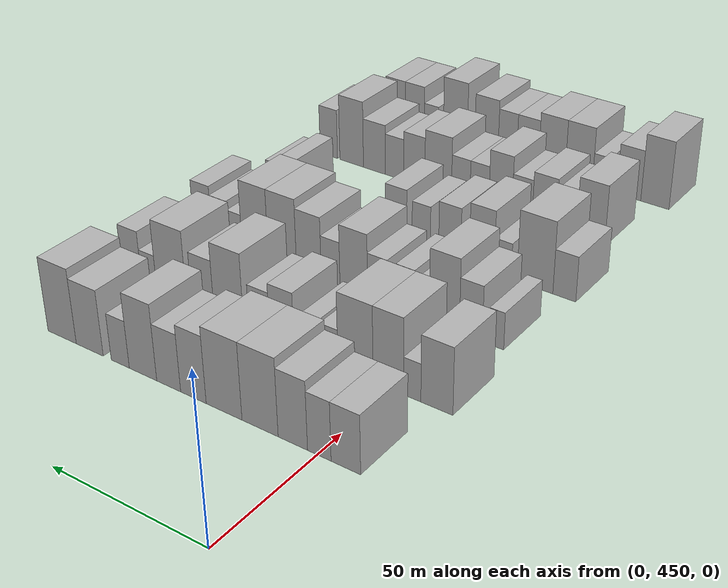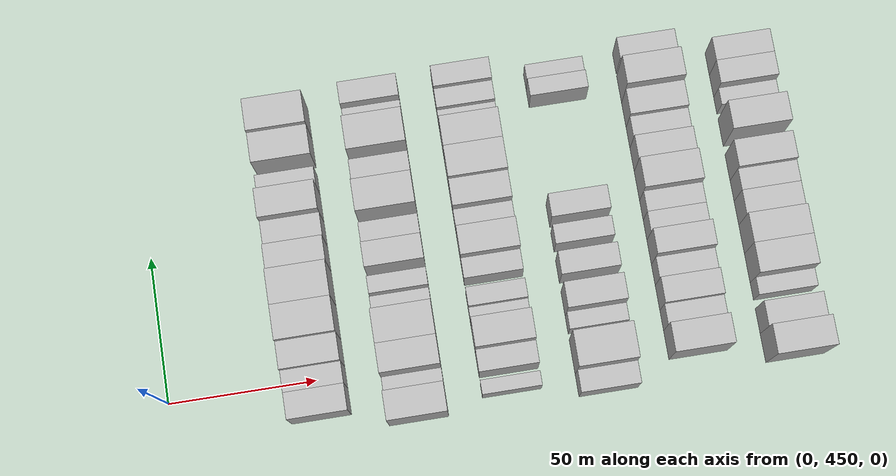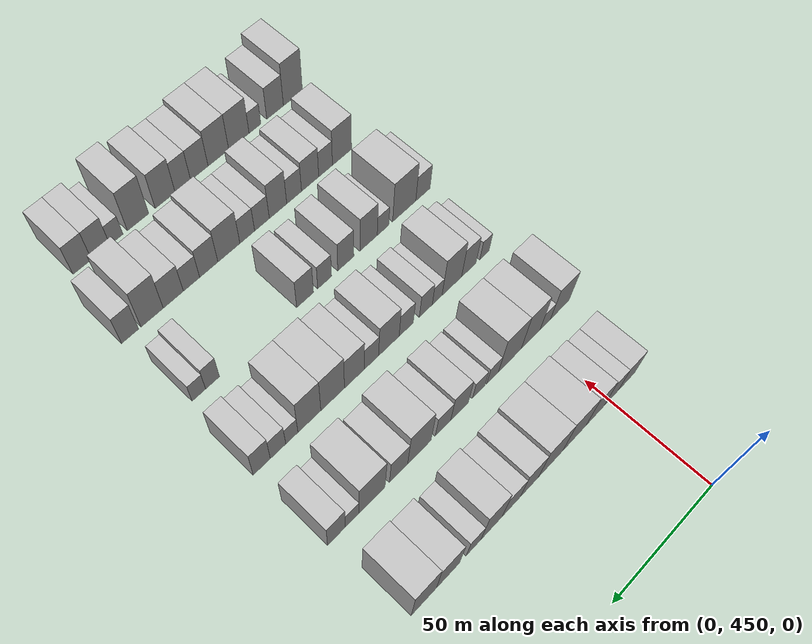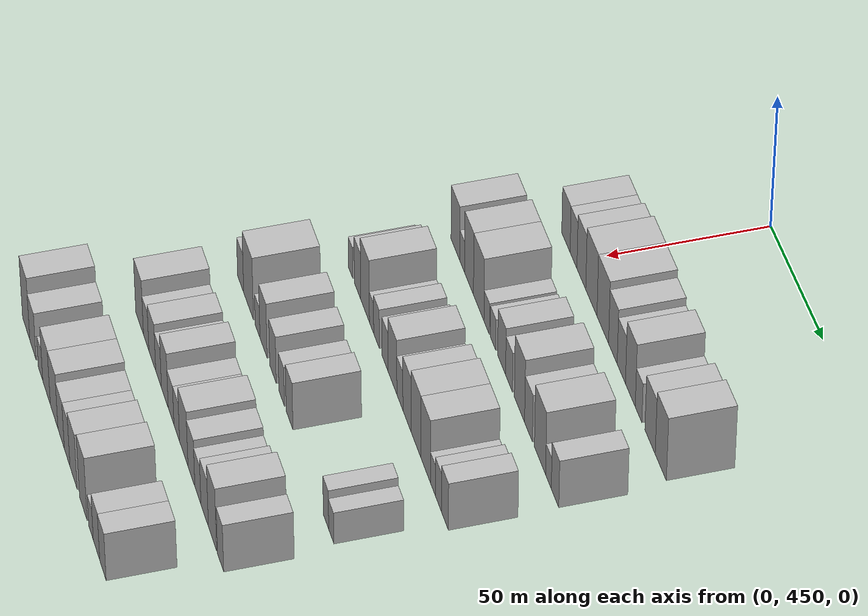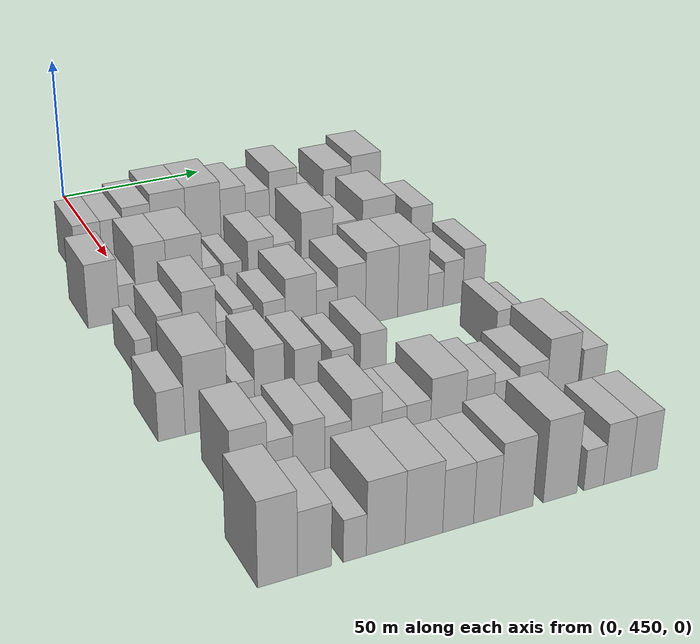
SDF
<sdf version="1.6">
 <world name="default">
  <model name="building_107">
   <static>1</static>
   <pose>50.0000 441.2663 0 0.000000 0.000000 0.000000</pose>
   <link name="link">
    <pose>0 0 9.00 0 0 0</pose>
    <collision name="collision"><geometry><box><size>20.0000 8.8864 18.0000</size></box></geometry></collision>
    <visual name="visual">
     <cast_shadows>0</cast_shadows>
     <geometry><box><size>20.0000 8.8864 18.0000</size></box></geometry>
     <material>
      <script>
       <uri>model://HANNAS_wall/materials/scripts</uri>
       <uri>model://HANNAS_wall/materials/textures</uri>
       <name>vrc/HANNAS_wall</name>
      </script>
     </material>
    </visual>
   </link>
  </model>
  <model name="building_108">
   <static>1</static>
   <pose>50.0000 449.3331 0 0.000000 0.000000 0.000000</pose>
   <link name="link">
    <pose>0 0 9.00 0 0 0</pose>
    <collision name="collision"><geometry><box><size>20.0000 7.2473 18.0000</size></box></geometry></collision>
    <visual name="visual">
     <cast_shadows>0</cast_shadows>
     <geometry><box><size>20.0000 7.2473 18.0000</size></box></geometry>
     <material>
      <script>
       <uri>model://HANNAS_wall/materials/scripts</uri>
       <uri>model://HANNAS_wall/materials/textures</uri>
       <name>vrc/HANNAS_wall</name>
      </script>
     </material>
    </visual>
   </link>
  </model>
  <model name="building_109">
   <static>1</static>
   <pose>50.0000 457.5856 0 0.000000 0.000000 0.000000</pose>
   <link name="link">
    <pose>0 0 10.50 0 0 0</pose>
    <collision name="collision"><geometry><box><size>20.0000 9.2577 21.0000</size></box></geometry></collision>
    <visual name="visual">
     <cast_shadows>0</cast_shadows>
     <geometry><box><size>20.0000 9.2577 21.0000</size></box></geometry>
     <material>
      <script>
       <uri>model://HANNAS_wall/materials/scripts</uri>
       <uri>model://HANNAS_wall/materials/textures</uri>
       <name>vrc/HANNAS_wall</name>
      </script>
     </material>
    </visual>
   </link>
  </model>
  <model name="building_110">
   <static>1</static>
   <pose>50.0000 468.0788 0 0.000000 0.000000 0.000000</pose>
   <link name="link">
    <pose>0 0 12.00 0 0 0</pose>
    <collision name="collision"><geometry><box><size>20.0000 11.7287 24.0000</size></box></geometry></collision>
    <visual name="visual">
     <cast_shadows>0</cast_shadows>
     <geometry><box><size>20.0000 11.7287 24.0000</size></box></geometry>
     <material>
      <script>
       <uri>model://HANNAS_wall/materials/scripts</uri>
       <uri>model://HANNAS_wall/materials/textures</uri>
       <name>vrc/HANNAS_wall</name>
      </script>
     </material>
    </visual>
   </link>
  </model>
  <model name="building_111">
   <static>1</static>
   <pose>50.0000 479.9345 0 0.000000 0.000000 0.000000</pose>
   <link name="link">
    <pose>0 0 12.00 0 0 0</pose>
    <collision name="collision"><geometry><box><size>20.0000 11.9826 24.0000</size></box></geometry></collision>
    <visual name="visual">
     <cast_shadows>0</cast_shadows>
     <geometry><box><size>20.0000 11.9826 24.0000</size></box></geometry>
     <material>
      <script>
       <uri>model://HANNAS_wall/materials/scripts</uri>
       <uri>model://HANNAS_wall/materials/textures</uri>
       <name>vrc/HANNAS_wall</name>
      </script>
     </material>
    </visual>
   </link>
  </model>
  <model name="building_112">
   <static>1</static>
   <pose>50.0000 490.3185 0 0.000000 0.000000 0.000000</pose>
   <link name="link">
    <pose>0 0 10.50 0 0 0</pose>
    <collision name="collision"><geometry><box><size>20.0000 8.7855 21.0000</size></box></geometry></collision>
    <visual name="visual">
     <cast_shadows>0</cast_shadows>
     <geometry><box><size>20.0000 8.7855 21.0000</size></box></geometry>
     <material>
      <script>
       <uri>model://HANNAS_wall/materials/scripts</uri>
       <uri>model://HANNAS_wall/materials/textures</uri>
       <name>vrc/HANNAS_wall</name>
      </script>
     </material>
    </visual>
   </link>
  </model>
  <model name="building_113">
   <static>1</static>
   <pose>50.0000 498.9245 0 0.000000 0.000000 0.000000</pose>
   <link name="link">
    <pose>0 0 9.00 0 0 0</pose>
    <collision name="collision"><geometry><box><size>20.0000 8.4264 18.0000</size></box></geometry></collision>
    <visual name="visual">
     <cast_shadows>0</cast_shadows>
     <geometry><box><size>20.0000 8.4264 18.0000</size></box></geometry>
     <material>
      <script>
       <uri>model://HANNAS_wall/materials/scripts</uri>
       <uri>model://HANNAS_wall/materials/textures</uri>
       <name>vrc/HANNAS_wall</name>
      </script>
     </material>
    </visual>
   </link>
  </model>
  <model name="building_114">
   <static>1</static>
   <pose>50.0000 508.0843 0 0.000000 0.000000 0.000000</pose>
   <link name="link">
    <pose>0 0 12.00 0 0 0</pose>
    <collision name="collision"><geometry><box><size>20.0000 9.8933 24.0000</size></box></geometry></collision>
    <visual name="visual">
     <cast_shadows>0</cast_shadows>
     <geometry><box><size>20.0000 9.8933 24.0000</size></box></geometry>
     <material>
      <script>
       <uri>model://HANNAS_wall/materials/scripts</uri>
       <uri>model://HANNAS_wall/materials/textures</uri>
       <name>vrc/HANNAS_wall</name>
      </script>
     </material>
    </visual>
   </link>
  </model>
  <model name="building_115">
   <static>1</static>
   <pose>50.0000 516.3535 0 0.000000 0.000000 0.000000</pose>
   <link name="link">
    <pose>0 0 7.50 0 0 0</pose>
    <collision name="collision"><geometry><box><size>20.0000 6.6451 15.0000</size></box></geometry></collision>
    <visual name="visual">
     <cast_shadows>0</cast_shadows>
     <geometry><box><size>20.0000 6.6451 15.0000</size></box></geometry>
     <material>
      <script>
       <uri>model://HANNAS_wall/materials/scripts</uri>
       <uri>model://HANNAS_wall/materials/textures</uri>
       <name>vrc/HANNAS_wall</name>
      </script>
     </material>
    </visual>
   </link>
  </model>
  <model name="building_116">
   <static>1</static>
   <pose>50.0000 527.7894 0 0.000000 0.000000 0.000000</pose>
   <link name="link">
    <pose>0 0 10.50 0 0 0</pose>
    <collision name="collision"><geometry><box><size>20.0000 10.2266 21.0000</size></box></geometry></collision>
    <visual name="visual">
     <cast_shadows>0</cast_shadows>
     <geometry><box><size>20.0000 10.2266 21.0000</size></box></geometry>
     <material>
      <script>
       <uri>model://HANNAS_wall/materials/scripts</uri>
       <uri>model://HANNAS_wall/materials/textures</uri>
       <name>vrc/HANNAS_wall</name>
      </script>
     </material>
    </visual>
   </link>
  </model>
  <model name="building_117">
   <static>1</static>
   <pose>50.0000 538.3932 0 0.000000 0.000000 0.000000</pose>
   <link name="link">
    <pose>0 0 12.00 0 0 0</pose>
    <collision name="collision"><geometry><box><size>20.0000 10.9810 24.0000</size></box></geometry></collision>
    <visual name="visual">
     <cast_shadows>0</cast_shadows>
     <geometry><box><size>20.0000 10.9810 24.0000</size></box></geometry>
     <material>
      <script>
       <uri>model://HANNAS_wall/materials/scripts</uri>
       <uri>model://HANNAS_wall/materials/textures</uri>
       <name>vrc/HANNAS_wall</name>
      </script>
     </material>
    </visual>
   </link>
  </model>
  <model name="building_228">
   <static>1</static>
   <pose>82.0000 436.0137 0 0.000000 0.000000 0.000000</pose>
   <link name="link">
    <pose>0 0 10.50 0 0 0</pose>
    <collision name="collision"><geometry><box><size>20.0000 9.8283 21.0000</size></box></geometry></collision>
    <visual name="visual">
     <cast_shadows>0</cast_shadows>
     <geometry><box><size>20.0000 9.8283 21.0000</size></box></geometry>
     <material>
      <script>
       <uri>model://HANNAS_wall/materials/scripts</uri>
       <uri>model://HANNAS_wall/materials/textures</uri>
       <name>vrc/HANNAS_wall</name>
      </script>
     </material>
    </visual>
   </link>
  </model>
  <model name="building_229">
   <static>1</static>
   <pose>82.0000 443.6281 0 0.000000 0.000000 0.000000</pose>
   <link name="link">
    <pose>0 0 6.00 0 0 0</pose>
    <collision name="collision"><geometry><box><size>20.0000 5.4005 12.0000</size></box></geometry></collision>
    <visual name="visual">
     <cast_shadows>0</cast_shadows>
     <geometry><box><size>20.0000 5.4005 12.0000</size></box></geometry>
     <material>
      <script>
       <uri>model://HANNAS_wall/materials/scripts</uri>
       <uri>model://HANNAS_wall/materials/textures</uri>
       <name>vrc/HANNAS_wall</name>
      </script>
     </material>
    </visual>
   </link>
  </model>
  <model name="building_230">
   <static>1</static>
   <pose>82.0000 451.1950 0 0.000000 0.000000 0.000000</pose>
   <link name="link">
    <pose>0 0 12.00 0 0 0</pose>
    <collision name="collision"><geometry><box><size>20.0000 9.7334 24.0000</size></box></geometry></collision>
    <visual name="visual">
     <cast_shadows>0</cast_shadows>
     <geometry><box><size>20.0000 9.7334 24.0000</size></box></geometry>
     <material>
      <script>
       <uri>model://HANNAS_wall/materials/scripts</uri>
       <uri>model://HANNAS_wall/materials/textures</uri>
       <name>vrc/HANNAS_wall</name>
      </script>
     </material>
    </visual>
   </link>
  </model>
  <model name="building_231">
   <static>1</static>
   <pose>82.0000 461.8034 0 0.000000 0.000000 0.000000</pose>
   <link name="link">
    <pose>0 0 12.00 0 0 0</pose>
    <collision name="collision"><geometry><box><size>20.0000 11.4834 24.0000</size></box></geometry></collision>
    <visual name="visual">
     <cast_shadows>0</cast_shadows>
     <geometry><box><size>20.0000 11.4834 24.0000</size></box></geometry>
     <material>
      <script>
       <uri>model://HANNAS_wall/materials/scripts</uri>
       <uri>model://HANNAS_wall/materials/textures</uri>
       <name>vrc/HANNAS_wall</name>
      </script>
     </material>
    </visual>
   </link>
  </model>
  <model name="building_232">
   <static>1</static>
   <pose>82.0000 470.4928 0 0.000000 0.000000 0.000000</pose>
   <link name="link">
    <pose>0 0 6.00 0 0 0</pose>
    <collision name="collision"><geometry><box><size>20.0000 5.8954 12.0000</size></box></geometry></collision>
    <visual name="visual">
     <cast_shadows>0</cast_shadows>
     <geometry><box><size>20.0000 5.8954 12.0000</size></box></geometry>
     <material>
      <script>
       <uri>model://HANNAS_wall/materials/scripts</uri>
       <uri>model://HANNAS_wall/materials/textures</uri>
       <name>vrc/HANNAS_wall</name>
      </script>
     </material>
    </visual>
   </link>
  </model>
  <model name="building_233">
   <static>1</static>
   <pose>82.0000 477.4291 0 0.000000 0.000000 0.000000</pose>
   <link name="link">
    <pose>0 0 6.00 0 0 0</pose>
    <collision name="collision"><geometry><box><size>20.0000 5.9770 12.0000</size></box></geometry></collision>
    <visual name="visual">
     <cast_shadows>0</cast_shadows>
     <geometry><box><size>20.0000 5.9770 12.0000</size></box></geometry>
     <material>
      <script>
       <uri>model://HANNAS_wall/materials/scripts</uri>
       <uri>model://HANNAS_wall/materials/textures</uri>
       <name>vrc/HANNAS_wall</name>
      </script>
     </material>
    </visual>
   </link>
  </model>
  <model name="building_234">
   <static>1</static>
   <pose>82.0000 486.6734 0 0.000000 0.000000 0.000000</pose>
   <link name="link">
    <pose>0 0 9.00 0 0 0</pose>
    <collision name="collision"><geometry><box><size>20.0000 8.5116 18.0000</size></box></geometry></collision>
    <visual name="visual">
     <cast_shadows>0</cast_shadows>
     <geometry><box><size>20.0000 8.5116 18.0000</size></box></geometry>
     <material>
      <script>
       <uri>model://HANNAS_wall/materials/scripts</uri>
       <uri>model://HANNAS_wall/materials/textures</uri>
       <name>vrc/HANNAS_wall</name>
      </script>
     </material>
    </visual>
   </link>
  </model>
  <model name="building_235">
   <static>1</static>
   <pose>82.0000 494.5826 0 0.000000 0.000000 0.000000</pose>
   <link name="link">
    <pose>0 0 7.50 0 0 0</pose>
    <collision name="collision"><geometry><box><size>20.0000 7.3069 15.0000</size></box></geometry></collision>
    <visual name="visual">
     <cast_shadows>0</cast_shadows>
     <geometry><box><size>20.0000 7.3069 15.0000</size></box></geometry>
     <material>
      <script>
       <uri>model://HANNAS_wall/materials/scripts</uri>
       <uri>model://HANNAS_wall/materials/textures</uri>
       <name>vrc/HANNAS_wall</name>
      </script>
     </material>
    </visual>
   </link>
  </model>
  <model name="building_236">
   <static>1</static>
   <pose>82.0000 505.6504 0 0.000000 0.000000 0.000000</pose>
   <link name="link">
    <pose>0 0 12.00 0 0 0</pose>
    <collision name="collision"><geometry><box><size>20.0000 10.8287 24.0000</size></box></geometry></collision>
    <visual name="visual">
     <cast_shadows>0</cast_shadows>
     <geometry><box><size>20.0000 10.8287 24.0000</size></box></geometry>
     <material>
      <script>
       <uri>model://HANNAS_wall/materials/scripts</uri>
       <uri>model://HANNAS_wall/materials/textures</uri>
       <name>vrc/HANNAS_wall</name>
      </script>
     </material>
    </visual>
   </link>
  </model>
  <model name="building_237">
   <static>1</static>
   <pose>82.0000 515.1942 0 0.000000 0.000000 0.000000</pose>
   <link name="link">
    <pose>0 0 9.00 0 0 0</pose>
    <collision name="collision"><geometry><box><size>20.0000 8.2590 18.0000</size></box></geometry></collision>
    <visual name="visual">
     <cast_shadows>0</cast_shadows>
     <geometry><box><size>20.0000 8.2590 18.0000</size></box></geometry>
     <material>
      <script>
       <uri>model://HANNAS_wall/materials/scripts</uri>
       <uri>model://HANNAS_wall/materials/textures</uri>
       <name>vrc/HANNAS_wall</name>
      </script>
     </material>
    </visual>
   </link>
  </model>
  <model name="building_238">
   <static>1</static>
   <pose>82.0000 527.1223 0 0.000000 0.000000 0.000000</pose>
   <link name="link">
    <pose>0 0 12.00 0 0 0</pose>
    <collision name="collision"><geometry><box><size>20.0000 11.5972 24.0000</size></box></geometry></collision>
    <visual name="visual">
     <cast_shadows>0</cast_shadows>
     <geometry><box><size>20.0000 11.5972 24.0000</size></box></geometry>
     <material>
      <script>
       <uri>model://HANNAS_wall/materials/scripts</uri>
       <uri>model://HANNAS_wall/materials/textures</uri>
       <name>vrc/HANNAS_wall</name>
      </script>
     </material>
    </visual>
   </link>
  </model>
  <model name="building_239">
   <static>1</static>
   <pose>82.0000 535.8620 0 0.000000 0.000000 0.000000</pose>
   <link name="link">
    <pose>0 0 6.00 0 0 0</pose>
    <collision name="collision"><geometry><box><size>20.0000 5.8821 12.0000</size></box></geometry></collision>
    <visual name="visual">
     <cast_shadows>0</cast_shadows>
     <geometry><box><size>20.0000 5.8821 12.0000</size></box></geometry>
     <material>
      <script>
       <uri>model://HANNAS_wall/materials/scripts</uri>
       <uri>model://HANNAS_wall/materials/textures</uri>
       <name>vrc/HANNAS_wall</name>
      </script>
     </material>
    </visual>
   </link>
  </model>
  <model name="building_240">
   <static>1</static>
   <pose>82.0000 542.6327 0 0.000000 0.000000 0.000000</pose>
   <link name="link">
    <pose>0 0 9.00 0 0 0</pose>
    <collision name="collision"><geometry><box><size>20.0000 7.6593 18.0000</size></box></geometry></collision>
    <visual name="visual">
     <cast_shadows>0</cast_shadows>
     <geometry><box><size>20.0000 7.6593 18.0000</size></box></geometry>
     <material>
      <script>
       <uri>model://HANNAS_wall/materials/scripts</uri>
       <uri>model://HANNAS_wall/materials/textures</uri>
       <name>vrc/HANNAS_wall</name>
      </script>
     </material>
    </visual>
   </link>
  </model>
  <model name="building_351">
   <static>1</static>
   <pose>114.0000 437.7732 0 0.000000 0.000000 0.000000</pose>
   <link name="link">
    <pose>0 0 6.00 0 0 0</pose>
    <collision name="collision"><geometry><box><size>20.0000 4.8474 12.0000</size></box></geometry></collision>
    <visual name="visual">
     <cast_shadows>0</cast_shadows>
     <geometry><box><size>20.0000 4.8474 12.0000</size></box></geometry>
     <material>
      <script>
       <uri>model://HANNAS_wall/materials/scripts</uri>
       <uri>model://HANNAS_wall/materials/textures</uri>
       <name>vrc/HANNAS_wall</name>
      </script>
     </material>
    </visual>
   </link>
  </model>
  <model name="building_352">
   <static>1</static>
   <pose>114.0000 445.9228 0 0.000000 0.000000 0.000000</pose>
   <link name="link">
    <pose>0 0 9.00 0 0 0</pose>
    <collision name="collision"><geometry><box><size>20.0000 7.4518 18.0000</size></box></geometry></collision>
    <visual name="visual">
     <cast_shadows>0</cast_shadows>
     <geometry><box><size>20.0000 7.4518 18.0000</size></box></geometry>
     <material>
      <script>
       <uri>model://HANNAS_wall/materials/scripts</uri>
       <uri>model://HANNAS_wall/materials/textures</uri>
       <name>vrc/HANNAS_wall</name>
      </script>
     </material>
    </visual>
   </link>
  </model>
  <model name="building_353">
   <static>1</static>
   <pose>114.0000 454.6347 0 0.000000 0.000000 0.000000</pose>
   <link name="link">
    <pose>0 0 12.00 0 0 0</pose>
    <collision name="collision"><geometry><box><size>20.0000 9.9720 24.0000</size></box></geometry></collision>
    <visual name="visual">
     <cast_shadows>0</cast_shadows>
     <geometry><box><size>20.0000 9.9720 24.0000</size></box></geometry>
     <material>
      <script>
       <uri>model://HANNAS_wall/materials/scripts</uri>
       <uri>model://HANNAS_wall/materials/textures</uri>
       <name>vrc/HANNAS_wall</name>
      </script>
     </material>
    </visual>
   </link>
  </model>
  <model name="building_354">
   <static>1</static>
   <pose>114.0000 462.0825 0 0.000000 0.000000 0.000000</pose>
   <link name="link">
    <pose>0 0 6.00 0 0 0</pose>
    <collision name="collision"><geometry><box><size>20.0000 4.9237 12.0000</size></box></geometry></collision>
    <visual name="visual">
     <cast_shadows>0</cast_shadows>
     <geometry><box><size>20.0000 4.9237 12.0000</size></box></geometry>
     <material>
      <script>
       <uri>model://HANNAS_wall/materials/scripts</uri>
       <uri>model://HANNAS_wall/materials/textures</uri>
       <name>vrc/HANNAS_wall</name>
      </script>
     </material>
    </visual>
   </link>
  </model>
  <model name="building_355">
   <static>1</static>
   <pose>114.0000 467.7558 0 0.000000 0.000000 0.000000</pose>
   <link name="link">
    <pose>0 0 7.50 0 0 0</pose>
    <collision name="collision"><geometry><box><size>20.0000 6.4229 15.0000</size></box></geometry></collision>
    <visual name="visual">
     <cast_shadows>0</cast_shadows>
     <geometry><box><size>20.0000 6.4229 15.0000</size></box></geometry>
     <material>
      <script>
       <uri>model://HANNAS_wall/materials/scripts</uri>
       <uri>model://HANNAS_wall/materials/textures</uri>
       <name>vrc/HANNAS_wall</name>
      </script>
     </material>
    </visual>
   </link>
  </model>
  <model name="building_356">
   <static>1</static>
   <pose>114.0000 477.4314 0 0.000000 0.000000 0.000000</pose>
   <link name="link">
    <pose>0 0 7.50 0 0 0</pose>
    <collision name="collision"><geometry><box><size>20.0000 6.9282 15.0000</size></box></geometry></collision>
    <visual name="visual">
     <cast_shadows>0</cast_shadows>
     <geometry><box><size>20.0000 6.9282 15.0000</size></box></geometry>
     <material>
      <script>
       <uri>model://HANNAS_wall/materials/scripts</uri>
       <uri>model://HANNAS_wall/materials/textures</uri>
       <name>vrc/HANNAS_wall</name>
      </script>
     </material>
    </visual>
   </link>
  </model>
  <model name="building_357">
   <static>1</static>
   <pose>114.0000 485.8322 0 0.000000 0.000000 0.000000</pose>
   <link name="link">
    <pose>0 0 10.50 0 0 0</pose>
    <collision name="collision"><geometry><box><size>20.0000 9.8734 21.0000</size></box></geometry></collision>
    <visual name="visual">
     <cast_shadows>0</cast_shadows>
     <geometry><box><size>20.0000 9.8734 21.0000</size></box></geometry>
     <material>
      <script>
       <uri>model://HANNAS_wall/materials/scripts</uri>
       <uri>model://HANNAS_wall/materials/textures</uri>
       <name>vrc/HANNAS_wall</name>
      </script>
     </material>
    </visual>
   </link>
  </model>
  <model name="building_358">
   <static>1</static>
   <pose>114.0000 494.1640 0 0.000000 0.000000 0.000000</pose>
   <link name="link">
    <pose>0 0 7.50 0 0 0</pose>
    <collision name="collision"><geometry><box><size>20.0000 6.7902 15.0000</size></box></geometry></collision>
    <visual name="visual">
     <cast_shadows>0</cast_shadows>
     <geometry><box><size>20.0000 6.7902 15.0000</size></box></geometry>
     <material>
      <script>
       <uri>model://HANNAS_wall/materials/scripts</uri>
       <uri>model://HANNAS_wall/materials/textures</uri>
       <name>vrc/HANNAS_wall</name>
      </script>
     </material>
    </visual>
   </link>
  </model>
  <model name="building_359">
   <static>1</static>
   <pose>114.0000 502.1605 0 0.000000 0.000000 0.000000</pose>
   <link name="link">
    <pose>0 0 10.50 0 0 0</pose>
    <collision name="collision"><geometry><box><size>20.0000 9.2028 21.0000</size></box></geometry></collision>
    <visual name="visual">
     <cast_shadows>0</cast_shadows>
     <geometry><box><size>20.0000 9.2028 21.0000</size></box></geometry>
     <material>
      <script>
       <uri>model://HANNAS_wall/materials/scripts</uri>
       <uri>model://HANNAS_wall/materials/textures</uri>
       <name>vrc/HANNAS_wall</name>
      </script>
     </material>
    </visual>
   </link>
  </model>
  <model name="building_360">
   <static>1</static>
   <pose>114.0000 512.1351 0 0.000000 0.000000 0.000000</pose>
   <link name="link">
    <pose>0 0 12.00 0 0 0</pose>
    <collision name="collision"><geometry><box><size>20.0000 10.7465 24.0000</size></box></geometry></collision>
    <visual name="visual">
     <cast_shadows>0</cast_shadows>
     <geometry><box><size>20.0000 10.7465 24.0000</size></box></geometry>
     <material>
      <script>
       <uri>model://HANNAS_wall/materials/scripts</uri>
       <uri>model://HANNAS_wall/materials/textures</uri>
       <name>vrc/HANNAS_wall</name>
      </script>
     </material>
    </visual>
   </link>
  </model>
  <model name="building_361">
   <static>1</static>
   <pose>114.0000 522.6321 0 0.000000 0.000000 0.000000</pose>
   <link name="link">
    <pose>0 0 12.00 0 0 0</pose>
    <collision name="collision"><geometry><box><size>20.0000 10.2475 24.0000</size></box></geometry></collision>
    <visual name="visual">
     <cast_shadows>0</cast_shadows>
     <geometry><box><size>20.0000 10.2475 24.0000</size></box></geometry>
     <material>
      <script>
       <uri>model://HANNAS_wall/materials/scripts</uri>
       <uri>model://HANNAS_wall/materials/textures</uri>
       <name>vrc/HANNAS_wall</name>
      </script>
     </material>
    </visual>
   </link>
  </model>
  <model name="building_362">
   <static>1</static>
   <pose>114.0000 530.4355 0 0.000000 0.000000 0.000000</pose>
   <link name="link">
    <pose>0 0 6.00 0 0 0</pose>
    <collision name="collision"><geometry><box><size>20.0000 5.3593 12.0000</size></box></geometry></collision>
    <visual name="visual">
     <cast_shadows>0</cast_shadows>
     <geometry><box><size>20.0000 5.3593 12.0000</size></box></geometry>
     <material>
      <script>
       <uri>model://HANNAS_wall/materials/scripts</uri>
       <uri>model://HANNAS_wall/materials/textures</uri>
       <name>vrc/HANNAS_wall</name>
      </script>
     </material>
    </visual>
   </link>
  </model>
  <model name="building_363">
   <static>1</static>
   <pose>114.0000 536.4703 0 0.000000 0.000000 0.000000</pose>
   <link name="link">
    <pose>0 0 7.50 0 0 0</pose>
    <collision name="collision"><geometry><box><size>20.0000 6.7103 15.0000</size></box></geometry></collision>
    <visual name="visual">
     <cast_shadows>0</cast_shadows>
     <geometry><box><size>20.0000 6.7103 15.0000</size></box></geometry>
     <material>
      <script>
       <uri>model://HANNAS_wall/materials/scripts</uri>
       <uri>model://HANNAS_wall/materials/textures</uri>
       <name>vrc/HANNAS_wall</name>
      </script>
     </material>
    </visual>
   </link>
  </model>
  <model name="building_364">
   <static>1</static>
   <pose>114.0000 543.5127 0 0.000000 0.000000 0.000000</pose>
   <link name="link">
    <pose>0 0 9.00 0 0 0</pose>
    <collision name="collision"><geometry><box><size>20.0000 7.3746 18.0000</size></box></geometry></collision>
    <visual name="visual">
     <cast_shadows>0</cast_shadows>
     <geometry><box><size>20.0000 7.3746 18.0000</size></box></geometry>
     <material>
      <script>
       <uri>model://HANNAS_wall/materials/scripts</uri>
       <uri>model://HANNAS_wall/materials/textures</uri>
       <name>vrc/HANNAS_wall</name>
      </script>
     </material>
    </visual>
   </link>
  </model>
  <model name="building_473">
   <static>1</static>
   <pose>146.0000 434.3756 0 0.000000 0.000000 0.000000</pose>
   <link name="link">
    <pose>0 0 7.50 0 0 0</pose>
    <collision name="collision"><geometry><box><size>20.0000 7.4998 15.0000</size></box></geometry></collision>
    <visual name="visual">
     <cast_shadows>0</cast_shadows>
     <geometry><box><size>20.0000 7.4998 15.0000</size></box></geometry>
     <material>
      <script>
       <uri>model://HANNAS_wall/materials/scripts</uri>
       <uri>model://HANNAS_wall/materials/textures</uri>
       <name>vrc/HANNAS_wall</name>
      </script>
     </material>
    </visual>
   </link>
  </model>
  <model name="building_474">
   <static>1</static>
   <pose>146.0000 444.1142 0 0.000000 0.000000 0.000000</pose>
   <link name="link">
    <pose>0 0 12.00 0 0 0</pose>
    <collision name="collision"><geometry><box><size>20.0000 11.9774 24.0000</size></box></geometry></collision>
    <visual name="visual">
     <cast_shadows>0</cast_shadows>
     <geometry><box><size>20.0000 11.9774 24.0000</size></box></geometry>
     <material>
      <script>
       <uri>model://HANNAS_wall/materials/scripts</uri>
       <uri>model://HANNAS_wall/materials/textures</uri>
       <name>vrc/HANNAS_wall</name>
      </script>
     </material>
    </visual>
   </link>
  </model>
  <model name="building_475">
   <static>1</static>
   <pose>146.0000 455.0359 0 0.000000 0.000000 0.000000</pose>
   <link name="link">
    <pose>0 0 6.00 0 0 0</pose>
    <collision name="collision"><geometry><box><size>20.0000 5.8659 12.0000</size></box></geometry></collision>
    <visual name="visual">
     <cast_shadows>0</cast_shadows>
     <geometry><box><size>20.0000 5.8659 12.0000</size></box></geometry>
     <material>
      <script>
       <uri>model://HANNAS_wall/materials/scripts</uri>
       <uri>model://HANNAS_wall/materials/textures</uri>
       <name>vrc/HANNAS_wall</name>
      </script>
     </material>
    </visual>
   </link>
  </model>
  <model name="building_476">
   <static>1</static>
   <pose>146.0000 462.3127 0 0.000000 0.000000 0.000000</pose>
   <link name="link">
    <pose>0 0 10.50 0 0 0</pose>
    <collision name="collision"><geometry><box><size>20.0000 8.6877 21.0000</size></box></geometry></collision>
    <visual name="visual">
     <cast_shadows>0</cast_shadows>
     <geometry><box><size>20.0000 8.6877 21.0000</size></box></geometry>
     <material>
      <script>
       <uri>model://HANNAS_wall/materials/scripts</uri>
       <uri>model://HANNAS_wall/materials/textures</uri>
       <name>vrc/HANNAS_wall</name>
      </script>
     </material>
    </visual>
   </link>
  </model>
  <model name="building_477">
   <static>1</static>
   <pose>146.0000 473.6084 0 0.000000 0.000000 0.000000</pose>
   <link name="link">
    <pose>0 0 9.00 0 0 0</pose>
    <collision name="collision"><geometry><box><size>20.0000 7.9036 18.0000</size></box></geometry></collision>
    <visual name="visual">
     <cast_shadows>0</cast_shadows>
     <geometry><box><size>20.0000 7.9036 18.0000</size></box></geometry>
     <material>
      <script>
       <uri>model://HANNAS_wall/materials/scripts</uri>
       <uri>model://HANNAS_wall/materials/textures</uri>
       <name>vrc/HANNAS_wall</name>
      </script>
     </material>
    </visual>
   </link>
  </model>
  <model name="building_478">
   <static>1</static>
   <pose>146.0000 483.8986 0 0.000000 0.000000 0.000000</pose>
   <link name="link">
    <pose>0 0 7.50 0 0 0</pose>
    <collision name="collision"><geometry><box><size>20.0000 6.6769 15.0000</size></box></geometry></collision>
    <visual name="visual">
     <cast_shadows>0</cast_shadows>
     <geometry><box><size>20.0000 6.6769 15.0000</size></box></geometry>
     <material>
      <script>
       <uri>model://HANNAS_wall/materials/scripts</uri>
       <uri>model://HANNAS_wall/materials/textures</uri>
       <name>vrc/HANNAS_wall</name>
      </script>
     </material>
    </visual>
   </link>
  </model>
  <model name="building_479">
   <static>1</static>
   <pose>146.0000 493.2116 0 0.000000 0.000000 0.000000</pose>
   <link name="link">
    <pose>0 0 9.00 0 0 0</pose>
    <collision name="collision"><geometry><box><size>20.0000 7.9492 18.0000</size></box></geometry></collision>
    <visual name="visual">
     <cast_shadows>0</cast_shadows>
     <geometry><box><size>20.0000 7.9492 18.0000</size></box></geometry>
     <material>
      <script>
       <uri>model://HANNAS_wall/materials/scripts</uri>
       <uri>model://HANNAS_wall/materials/textures</uri>
       <name>vrc/HANNAS_wall</name>
      </script>
     </material>
    </visual>
   </link>
  </model>
  <model name="building_480">
   <static>1</static>
   <pose>146.0000 535.3091 0 0.000000 0.000000 0.000000</pose>
   <link name="link">
    <pose>0 0 7.50 0 0 0</pose>
    <collision name="collision"><geometry><box><size>20.0000 6.0819 15.0000</size></box></geometry></collision>
    <visual name="visual">
     <cast_shadows>0</cast_shadows>
     <geometry><box><size>20.0000 6.0819 15.0000</size></box></geometry>
     <material>
      <script>
       <uri>model://HANNAS_wall/materials/scripts</uri>
       <uri>model://HANNAS_wall/materials/textures</uri>
       <name>vrc/HANNAS_wall</name>
      </script>
     </material>
    </visual>
   </link>
  </model>
  <model name="building_481">
   <static>1</static>
   <pose>146.0000 541.2784 0 0.000000 0.000000 0.000000</pose>
   <link name="link">
    <pose>0 0 6.00 0 0 0</pose>
    <collision name="collision"><geometry><box><size>20.0000 5.8568 12.0000</size></box></geometry></collision>
    <visual name="visual">
     <cast_shadows>0</cast_shadows>
     <geometry><box><size>20.0000 5.8568 12.0000</size></box></geometry>
     <material>
      <script>
       <uri>model://HANNAS_wall/materials/scripts</uri>
       <uri>model://HANNAS_wall/materials/textures</uri>
       <name>vrc/HANNAS_wall</name>
      </script>
     </material>
    </visual>
   </link>
  </model>
  <model name="building_590">
   <static>1</static>
   <pose>178.0000 443.0950 0 0.000000 0.000000 0.000000</pose>
   <link name="link">
    <pose>0 0 10.50 0 0 0</pose>
    <collision name="collision"><geometry><box><size>20.0000 9.8503 21.0000</size></box></geometry></collision>
    <visual name="visual">
     <cast_shadows>0</cast_shadows>
     <geometry><box><size>20.0000 9.8503 21.0000</size></box></geometry>
     <material>
      <script>
       <uri>model://HANNAS_wall/materials/scripts</uri>
       <uri>model://HANNAS_wall/materials/textures</uri>
       <name>vrc/HANNAS_wall</name>
      </script>
     </material>
    </visual>
   </link>
  </model>
  <model name="building_591">
   <static>1</static>
   <pose>178.0000 451.5234 0 0.000000 0.000000 0.000000</pose>
   <link name="link">
    <pose>0 0 7.50 0 0 0</pose>
    <collision name="collision"><geometry><box><size>20.0000 7.0066 15.0000</size></box></geometry></collision>
    <visual name="visual">
     <cast_shadows>0</cast_shadows>
     <geometry><box><size>20.0000 7.0066 15.0000</size></box></geometry>
     <material>
      <script>
       <uri>model://HANNAS_wall/materials/scripts</uri>
       <uri>model://HANNAS_wall/materials/textures</uri>
       <name>vrc/HANNAS_wall</name>
      </script>
     </material>
    </visual>
   </link>
  </model>
  <model name="building_592">
   <static>1</static>
   <pose>178.0000 459.3435 0 0.000000 0.000000 0.000000</pose>
   <link name="link">
    <pose>0 0 9.00 0 0 0</pose>
    <collision name="collision"><geometry><box><size>20.0000 8.6335 18.0000</size></box></geometry></collision>
    <visual name="visual">
     <cast_shadows>0</cast_shadows>
     <geometry><box><size>20.0000 8.6335 18.0000</size></box></geometry>
     <material>
      <script>
       <uri>model://HANNAS_wall/materials/scripts</uri>
       <uri>model://HANNAS_wall/materials/textures</uri>
       <name>vrc/HANNAS_wall</name>
      </script>
     </material>
    </visual>
   </link>
  </model>
  <model name="building_593">
   <static>1</static>
   <pose>178.0000 467.3247 0 0.000000 0.000000 0.000000</pose>
   <link name="link">
    <pose>0 0 7.50 0 0 0</pose>
    <collision name="collision"><geometry><box><size>20.0000 7.3289 15.0000</size></box></geometry></collision>
    <visual name="visual">
     <cast_shadows>0</cast_shadows>
     <geometry><box><size>20.0000 7.3289 15.0000</size></box></geometry>
     <material>
      <script>
       <uri>model://HANNAS_wall/materials/scripts</uri>
       <uri>model://HANNAS_wall/materials/textures</uri>
       <name>vrc/HANNAS_wall</name>
      </script>
     </material>
    </visual>
   </link>
  </model>
  <model name="building_594">
   <static>1</static>
   <pose>178.0000 475.2579 0 0.000000 0.000000 0.000000</pose>
   <link name="link">
    <pose>0 0 10.50 0 0 0</pose>
    <collision name="collision"><geometry><box><size>20.0000 8.5375 21.0000</size></box></geometry></collision>
    <visual name="visual">
     <cast_shadows>0</cast_shadows>
     <geometry><box><size>20.0000 8.5375 21.0000</size></box></geometry>
     <material>
      <script>
       <uri>model://HANNAS_wall/materials/scripts</uri>
       <uri>model://HANNAS_wall/materials/textures</uri>
       <name>vrc/HANNAS_wall</name>
      </script>
     </material>
    </visual>
   </link>
  </model>
  <model name="building_595">
   <static>1</static>
   <pose>178.0000 483.0677 0 0.000000 0.000000 0.000000</pose>
   <link name="link">
    <pose>0 0 7.50 0 0 0</pose>
    <collision name="collision"><geometry><box><size>20.0000 7.0821 15.0000</size></box></geometry></collision>
    <visual name="visual">
     <cast_shadows>0</cast_shadows>
     <geometry><box><size>20.0000 7.0821 15.0000</size></box></geometry>
     <material>
      <script>
       <uri>model://HANNAS_wall/materials/scripts</uri>
       <uri>model://HANNAS_wall/materials/textures</uri>
       <name>vrc/HANNAS_wall</name>
      </script>
     </material>
    </visual>
   </link>
  </model>
  <model name="building_596">
   <static>1</static>
   <pose>178.0000 490.1242 0 0.000000 0.000000 0.000000</pose>
   <link name="link">
    <pose>0 0 7.50 0 0 0</pose>
    <collision name="collision"><geometry><box><size>20.0000 7.0310 15.0000</size></box></geometry></collision>
    <visual name="visual">
     <cast_shadows>0</cast_shadows>
     <geometry><box><size>20.0000 7.0310 15.0000</size></box></geometry>
     <material>
      <script>
       <uri>model://HANNAS_wall/materials/scripts</uri>
       <uri>model://HANNAS_wall/materials/textures</uri>
       <name>vrc/HANNAS_wall</name>
      </script>
     </material>
    </visual>
   </link>
  </model>
  <model name="building_597">
   <static>1</static>
   <pose>178.0000 498.8040 0 0.000000 0.000000 0.000000</pose>
   <link name="link">
    <pose>0 0 10.50 0 0 0</pose>
    <collision name="collision"><geometry><box><size>20.0000 10.3286 21.0000</size></box></geometry></collision>
    <visual name="visual">
     <cast_shadows>0</cast_shadows>
     <geometry><box><size>20.0000 10.3286 21.0000</size></box></geometry>
     <material>
      <script>
       <uri>model://HANNAS_wall/materials/scripts</uri>
       <uri>model://HANNAS_wall/materials/textures</uri>
       <name>vrc/HANNAS_wall</name>
      </script>
     </material>
    </visual>
   </link>
  </model>
  <model name="building_598">
   <static>1</static>
   <pose>178.0000 508.1665 0 0.000000 0.000000 0.000000</pose>
   <link name="link">
    <pose>0 0 9.00 0 0 0</pose>
    <collision name="collision"><geometry><box><size>20.0000 8.3964 18.0000</size></box></geometry></collision>
    <visual name="visual">
     <cast_shadows>0</cast_shadows>
     <geometry><box><size>20.0000 8.3964 18.0000</size></box></geometry>
     <material>
      <script>
       <uri>model://HANNAS_wall/materials/scripts</uri>
       <uri>model://HANNAS_wall/materials/textures</uri>
       <name>vrc/HANNAS_wall</name>
      </script>
     </material>
    </visual>
   </link>
  </model>
  <model name="building_599">
   <static>1</static>
   <pose>178.0000 516.0741 0 0.000000 0.000000 0.000000</pose>
   <link name="link">
    <pose>0 0 7.50 0 0 0</pose>
    <collision name="collision"><geometry><box><size>20.0000 7.4186 15.0000</size></box></geometry></collision>
    <visual name="visual">
     <cast_shadows>0</cast_shadows>
     <geometry><box><size>20.0000 7.4186 15.0000</size></box></geometry>
     <material>
      <script>
       <uri>model://HANNAS_wall/materials/scripts</uri>
       <uri>model://HANNAS_wall/materials/textures</uri>
       <name>vrc/HANNAS_wall</name>
      </script>
     </material>
    </visual>
   </link>
  </model>
  <model name="building_600">
   <static>1</static>
   <pose>178.0000 524.2672 0 0.000000 0.000000 0.000000</pose>
   <link name="link">
    <pose>0 0 9.00 0 0 0</pose>
    <collision name="collision"><geometry><box><size>20.0000 8.9676 18.0000</size></box></geometry></collision>
    <visual name="visual">
     <cast_shadows>0</cast_shadows>
     <geometry><box><size>20.0000 8.9676 18.0000</size></box></geometry>
     <material>
      <script>
       <uri>model://HANNAS_wall/materials/scripts</uri>
       <uri>model://HANNAS_wall/materials/textures</uri>
       <name>vrc/HANNAS_wall</name>
      </script>
     </material>
    </visual>
   </link>
  </model>
  <model name="building_601">
   <static>1</static>
   <pose>178.0000 533.6743 0 0.000000 0.000000 0.000000</pose>
   <link name="link">
    <pose>0 0 12.00 0 0 0</pose>
    <collision name="collision"><geometry><box><size>20.0000 9.8468 24.0000</size></box></geometry></collision>
    <visual name="visual">
     <cast_shadows>0</cast_shadows>
     <geometry><box><size>20.0000 9.8468 24.0000</size></box></geometry>
     <material>
      <script>
       <uri>model://HANNAS_wall/materials/scripts</uri>
       <uri>model://HANNAS_wall/materials/textures</uri>
       <name>vrc/HANNAS_wall</name>
      </script>
     </material>
    </visual>
   </link>
  </model>
  <model name="building_602">
   <static>1</static>
   <pose>178.0000 543.2868 0 0.000000 0.000000 0.000000</pose>
   <link name="link">
    <pose>0 0 9.00 0 0 0</pose>
    <collision name="collision"><geometry><box><size>20.0000 7.3782 18.0000</size></box></geometry></collision>
    <visual name="visual">
     <cast_shadows>0</cast_shadows>
     <geometry><box><size>20.0000 7.3782 18.0000</size></box></geometry>
     <material>
      <script>
       <uri>model://HANNAS_wall/materials/scripts</uri>
       <uri>model://HANNAS_wall/materials/textures</uri>
       <name>vrc/HANNAS_wall</name>
      </script>
     </material>
    </visual>
   </link>
  </model>
  <model name="building_710">
   <static>1</static>
   <pose>210.0000 436.9418 0 0.000000 0.000000 0.000000</pose>
   <link name="link">
    <pose>0 0 12.00 0 0 0</pose>
    <collision name="collision"><geometry><box><size>20.0000 9.9177 24.0000</size></box></geometry></collision>
    <visual name="visual">
     <cast_shadows>0</cast_shadows>
     <geometry><box><size>20.0000 9.9177 24.0000</size></box></geometry>
     <material>
      <script>
       <uri>model://HANNAS_wall/materials/scripts</uri>
       <uri>model://HANNAS_wall/materials/textures</uri>
       <name>vrc/HANNAS_wall</name>
      </script>
     </material>
    </visual>
   </link>
  </model>
  <model name="building_711">
   <static>1</static>
   <pose>210.0000 446.1982 0 0.000000 0.000000 0.000000</pose>
   <link name="link">
    <pose>0 0 9.00 0 0 0</pose>
    <collision name="collision"><geometry><box><size>20.0000 8.5951 18.0000</size></box></geometry></collision>
    <visual name="visual">
     <cast_shadows>0</cast_shadows>
     <geometry><box><size>20.0000 8.5951 18.0000</size></box></geometry>
     <material>
      <script>
       <uri>model://HANNAS_wall/materials/scripts</uri>
       <uri>model://HANNAS_wall/materials/textures</uri>
       <name>vrc/HANNAS_wall</name>
      </script>
     </material>
    </visual>
   </link>
  </model>
  <model name="building_712">
   <static>1</static>
   <pose>210.0000 456.4797 0 0.000000 0.000000 0.000000</pose>
   <link name="link">
    <pose>0 0 6.00 0 0 0</pose>
    <collision name="collision"><geometry><box><size>20.0000 5.9679 12.0000</size></box></geometry></collision>
    <visual name="visual">
     <cast_shadows>0</cast_shadows>
     <geometry><box><size>20.0000 5.9679 12.0000</size></box></geometry>
     <material>
      <script>
       <uri>model://HANNAS_wall/materials/scripts</uri>
       <uri>model://HANNAS_wall/materials/textures</uri>
       <name>vrc/HANNAS_wall</name>
      </script>
     </material>
    </visual>
   </link>
  </model>
  <model name="building_713">
   <static>1</static>
   <pose>210.0000 464.5510 0 0.000000 0.000000 0.000000</pose>
   <link name="link">
    <pose>0 0 10.50 0 0 0</pose>
    <collision name="collision"><geometry><box><size>20.0000 10.1747 21.0000</size></box></geometry></collision>
    <visual name="visual">
     <cast_shadows>0</cast_shadows>
     <geometry><box><size>20.0000 10.1747 21.0000</size></box></geometry>
     <material>
      <script>
       <uri>model://HANNAS_wall/materials/scripts</uri>
       <uri>model://HANNAS_wall/materials/textures</uri>
       <name>vrc/HANNAS_wall</name>
      </script>
     </material>
    </visual>
   </link>
  </model>
  <model name="building_714">
   <static>1</static>
   <pose>210.0000 474.6951 0 0.000000 0.000000 0.000000</pose>
   <link name="link">
    <pose>0 0 10.50 0 0 0</pose>
    <collision name="collision"><geometry><box><size>20.0000 10.1135 21.0000</size></box></geometry></collision>
    <visual name="visual">
     <cast_shadows>0</cast_shadows>
     <geometry><box><size>20.0000 10.1135 21.0000</size></box></geometry>
     <material>
      <script>
       <uri>model://HANNAS_wall/materials/scripts</uri>
       <uri>model://HANNAS_wall/materials/textures</uri>
       <name>vrc/HANNAS_wall</name>
      </script>
     </material>
    </visual>
   </link>
  </model>
  <model name="building_715">
   <static>1</static>
   <pose>210.0000 483.9783 0 0.000000 0.000000 0.000000</pose>
   <link name="link">
    <pose>0 0 9.00 0 0 0</pose>
    <collision name="collision"><geometry><box><size>20.0000 8.4530 18.0000</size></box></geometry></collision>
    <visual name="visual">
     <cast_shadows>0</cast_shadows>
     <geometry><box><size>20.0000 8.4530 18.0000</size></box></geometry>
     <material>
      <script>
       <uri>model://HANNAS_wall/materials/scripts</uri>
       <uri>model://HANNAS_wall/materials/textures</uri>
       <name>vrc/HANNAS_wall</name>
      </script>
     </material>
    </visual>
   </link>
  </model>
  <model name="building_716">
   <static>1</static>
   <pose>210.0000 491.8776 0 0.000000 0.000000 0.000000</pose>
   <link name="link">
    <pose>0 0 9.00 0 0 0</pose>
    <collision name="collision"><geometry><box><size>20.0000 7.3455 18.0000</size></box></geometry></collision>
    <visual name="visual">
     <cast_shadows>0</cast_shadows>
     <geometry><box><size>20.0000 7.3455 18.0000</size></box></geometry>
     <material>
      <script>
       <uri>model://HANNAS_wall/materials/scripts</uri>
       <uri>model://HANNAS_wall/materials/textures</uri>
       <name>vrc/HANNAS_wall</name>
      </script>
     </material>
    </visual>
   </link>
  </model>
  <model name="building_717">
   <static>1</static>
   <pose>210.0000 500.2314 0 0.000000 0.000000 0.000000</pose>
   <link name="link">
    <pose>0 0 10.50 0 0 0</pose>
    <collision name="collision"><geometry><box><size>20.0000 9.3621 21.0000</size></box></geometry></collision>
    <visual name="visual">
     <cast_shadows>0</cast_shadows>
     <geometry><box><size>20.0000 9.3621 21.0000</size></box></geometry>
     <material>
      <script>
       <uri>model://HANNAS_wall/materials/scripts</uri>
       <uri>model://HANNAS_wall/materials/textures</uri>
       <name>vrc/HANNAS_wall</name>
      </script>
     </material>
    </visual>
   </link>
  </model>
  <model name="building_718">
   <static>1</static>
   <pose>210.0000 512.8023 0 0.000000 0.000000 0.000000</pose>
   <link name="link">
    <pose>0 0 12.00 0 0 0</pose>
    <collision name="collision"><geometry><box><size>20.0000 9.7797 24.0000</size></box></geometry></collision>
    <visual name="visual">
     <cast_shadows>0</cast_shadows>
     <geometry><box><size>20.0000 9.7797 24.0000</size></box></geometry>
     <material>
      <script>
       <uri>model://HANNAS_wall/materials/scripts</uri>
       <uri>model://HANNAS_wall/materials/textures</uri>
       <name>vrc/HANNAS_wall</name>
      </script>
     </material>
    </visual>
   </link>
  </model>
  <model name="building_719">
   <static>1</static>
   <pose>210.0000 522.6559 0 0.000000 0.000000 0.000000</pose>
   <link name="link">
    <pose>0 0 6.00 0 0 0</pose>
    <collision name="collision"><geometry><box><size>20.0000 5.9276 12.0000</size></box></geometry></collision>
    <visual name="visual">
     <cast_shadows>0</cast_shadows>
     <geometry><box><size>20.0000 5.9276 12.0000</size></box></geometry>
     <material>
      <script>
       <uri>model://HANNAS_wall/materials/scripts</uri>
       <uri>model://HANNAS_wall/materials/textures</uri>
       <name>vrc/HANNAS_wall</name>
      </script>
     </material>
    </visual>
   </link>
  </model>
  <model name="building_720">
   <static>1</static>
   <pose>210.0000 529.6893 0 0.000000 0.000000 0.000000</pose>
   <link name="link">
    <pose>0 0 9.00 0 0 0</pose>
    <collision name="collision"><geometry><box><size>20.0000 8.1392 18.0000</size></box></geometry></collision>
    <visual name="visual">
     <cast_shadows>0</cast_shadows>
     <geometry><box><size>20.0000 8.1392 18.0000</size></box></geometry>
     <material>
      <script>
       <uri>model://HANNAS_wall/materials/scripts</uri>
       <uri>model://HANNAS_wall/materials/textures</uri>
       <name>vrc/HANNAS_wall</name>
      </script>
     </material>
    </visual>
   </link>
  </model>
  <model name="building_721">
   <static>1</static>
   <pose>210.0000 537.8305 0 0.000000 0.000000 0.000000</pose>
   <link name="link">
    <pose>0 0 9.00 0 0 0</pose>
    <collision name="collision"><geometry><box><size>20.0000 8.1432 18.0000</size></box></geometry></collision>
    <visual name="visual">
     <cast_shadows>0</cast_shadows>
     <geometry><box><size>20.0000 8.1432 18.0000</size></box></geometry>
     <material>
      <script>
       <uri>model://HANNAS_wall/materials/scripts</uri>
       <uri>model://HANNAS_wall/materials/textures</uri>
       <name>vrc/HANNAS_wall</name>
      </script>
     </material>
    </visual>
   </link>
  </model>
 </world>
</sdf>
